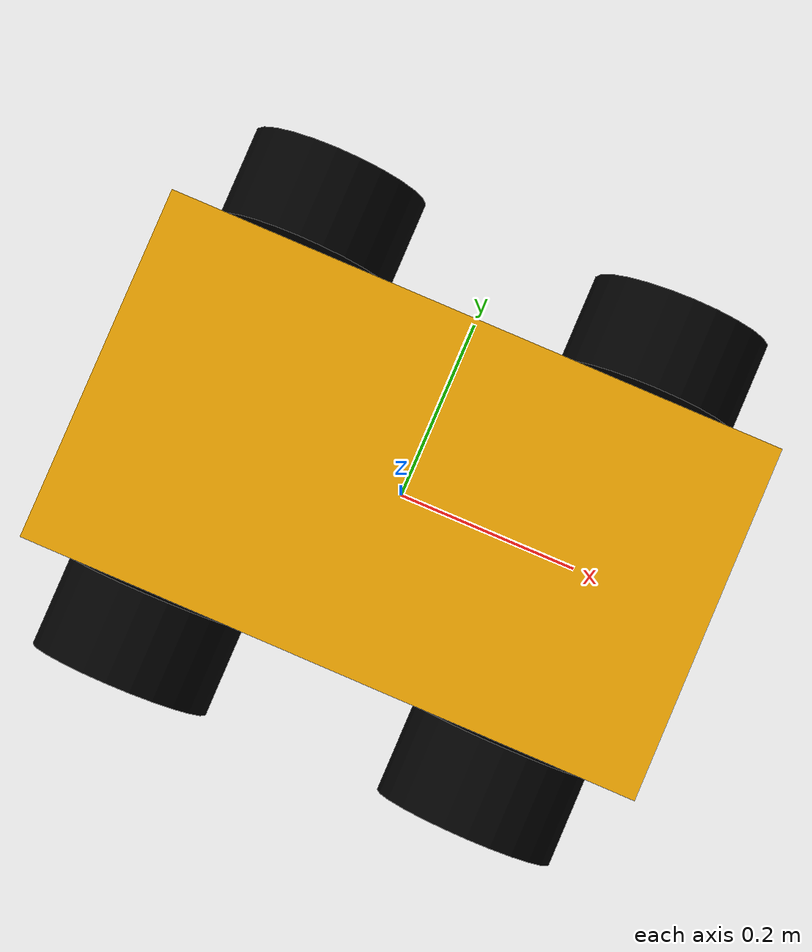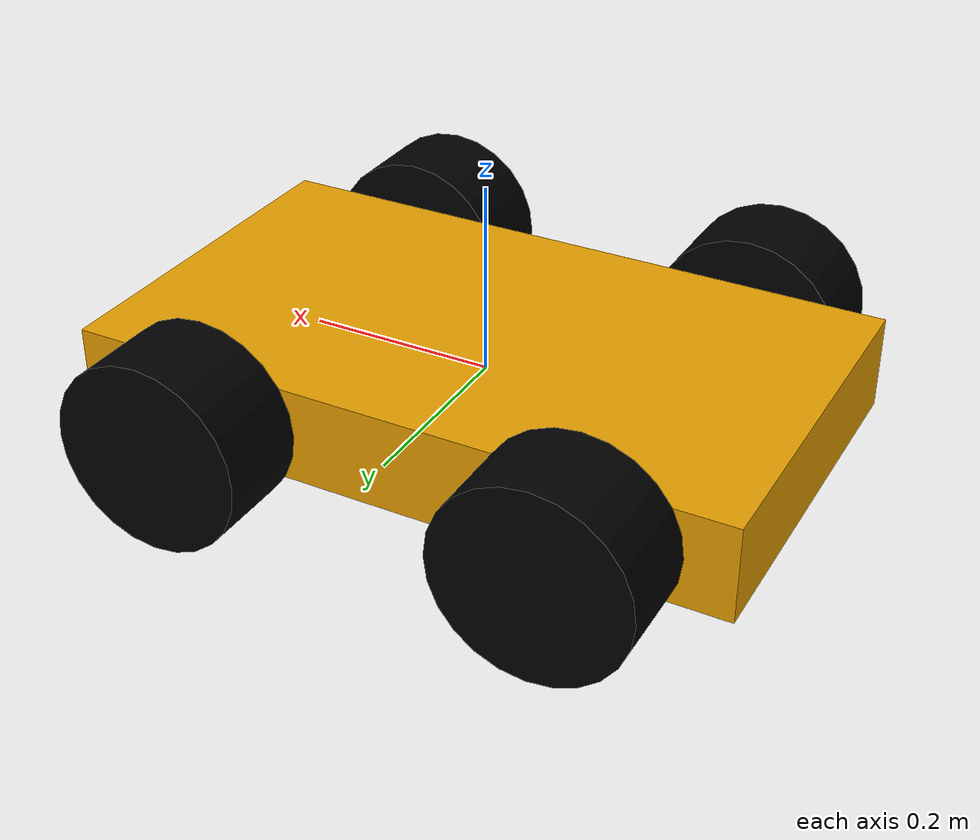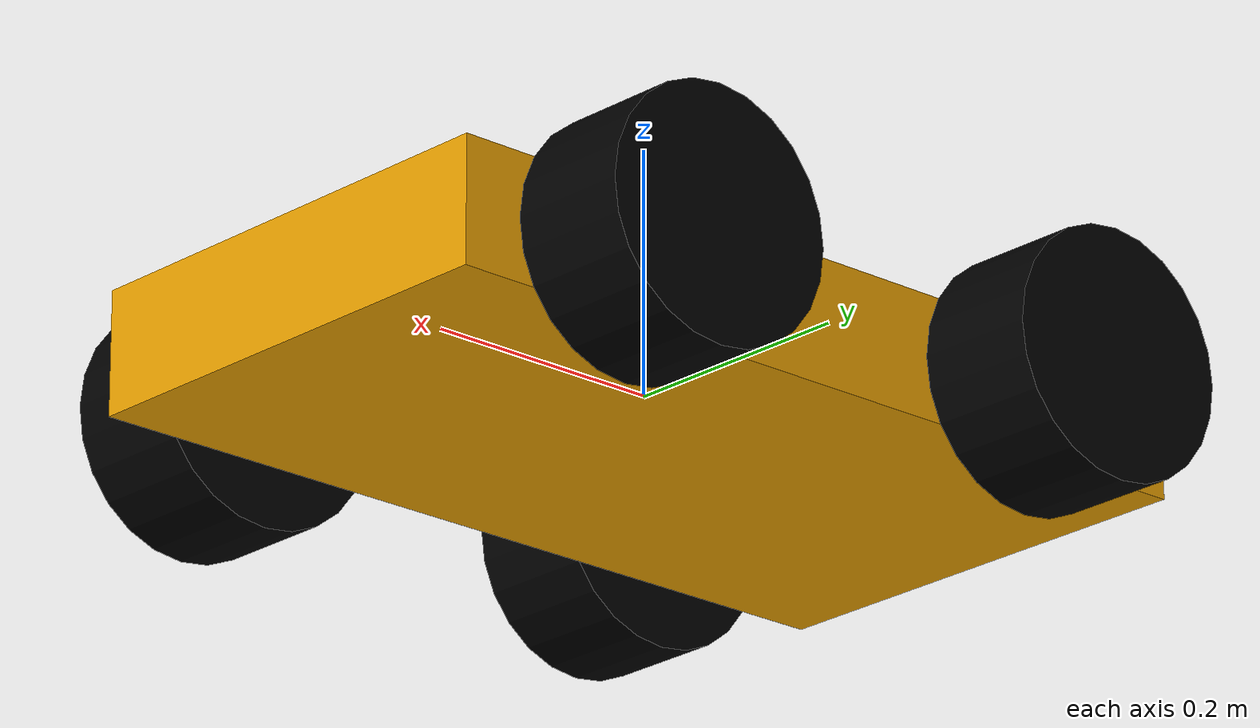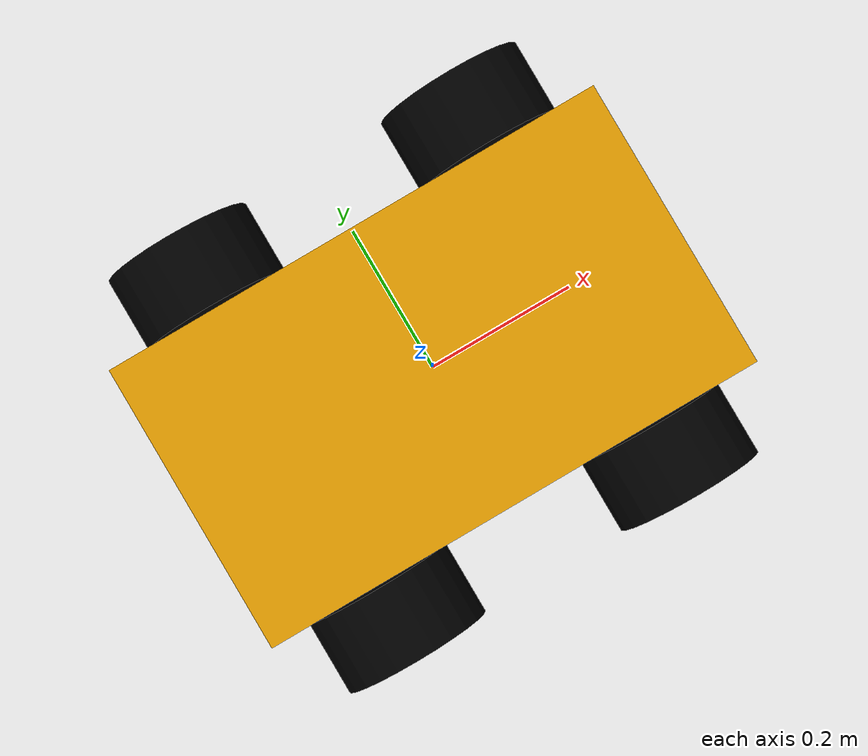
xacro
<?xml version="1.0"?>
<robot xmlns:xacro="http://www.ros.org/wiki/xacro" name="robot_name">

    <!-- property's   -->
    <xacro:property name="base_width" value="0.4" />
    <xacro:property name="base_length" value="0.7" />
    <xacro:property name="base_height" value="0.1" />
    <xacro:property name="wheel_radius" value="0.1" />
    <xacro:property name="wheel_length" value="0.1" />

    <!-- Color materials -->
    <material name="blue">
        <color rgba="0 0 0.8 1"/>
    </material>

    <material name="black">
        <color rgba="0 0 0 1"/>
    </material>

    <material name="white">
        <color rgba="1 1 1 1"/>
    </material>

    <!-- Base link -->

    <link name="base_link">
        <visual name="">
            <origin xyz="0.0 0.0 0.0" rpy="0.0 0.0 0.0"/>
            <geometry>
                <box size="${base_length} ${base_width} ${base_height}"/>
            </geometry>
            <material name="blur"/>
        </visual>
        <collision>
            <origin xyz="0.0 0.0 0.0" rpy="0.0 0.0 0.0"/>
            <geometry>
                <box size="${base_length} ${base_width} ${base_height}"/>
            </geometry>
        </collision>
    </link>

    <!-- Left wheel xacro macro -->
    <xacro:macro name="left_wheels" params="prefix reflect">
        <link name="${prefix}_left_wheel_link">
            <visual name="">
                <origin xyz="0.0 0.0 0.0" rpy="0.0 0.0 0.0"/>
                <geometry>
                    <cylinder radius="${wheel_radius}" length="${wheel_length}"/>
                </geometry>
                <material name="black"/>
            </visual>
            <collision>
                <origin xyz="0.0 0.0 0.0" rpy="0.0 0.0 0.0"/>
                <geometry>
                    <cylinder radius="0.2" length="0.2"/>
                </geometry>
            </collision>
        </link>

        <joint name="${prefix}_left_wheel_join" type="continuous">
            <origin xyz="${0.2*reflect} 0.25 0.0" rpy="1.5707963 0.0 0.0"/>
            <parent link="base_link"/>
            <child link="${prefix}_left_wheel_link"/>
            <axis xyz="0.0 0.0 1"/>
        </joint>
    </xacro:macro>

    <!-- Right wheel xacro macro -->
    <xacro:macro name="right_wheels" params="prefix reflect">
        <link name="${prefix}_right_wheel_link">
            <visual name="">
                <origin xyz="0.0 0.0 0.0" rpy="0.0 0.0 0.0"/>
                <geometry>
                    <cylinder radius="${wheel_radius}" length="${wheel_length}"/>
                </geometry>
                <material name="black"/>
            </visual>
            <collision>
                <origin xyz="0.0 0.0 0.0" rpy="0.0 0.0 0.0"/>
                <geometry>
                    <cylinder radius="0.2" length="0.2"/>
                </geometry>
            </collision>
        </link>

        <joint name="${prefix}_right_wheel_join" type="continuous">
            <origin xyz="${0.2*reflect} -0.25 0.0" rpy="1.5707963 0.0 0.0"/>
            <parent link="base_link"/>
            <child link="${prefix}_right_wheel_link"/>
            <axis xyz="0.0 0.0 1"/>
        </joint>
    </xacro:macro>

    <!-- Left front and back wheels -->
    <xacro:left_wheels prefix="front" reflect="1" />
    <xacro:left_wheels prefix="back" reflect="-1" />

    <!-- Right front and back wheels -->
    <xacro:right_wheels prefix="front" reflect="1" />
    <xacro:right_wheels prefix="back" reflect="-1" />

</robot>
